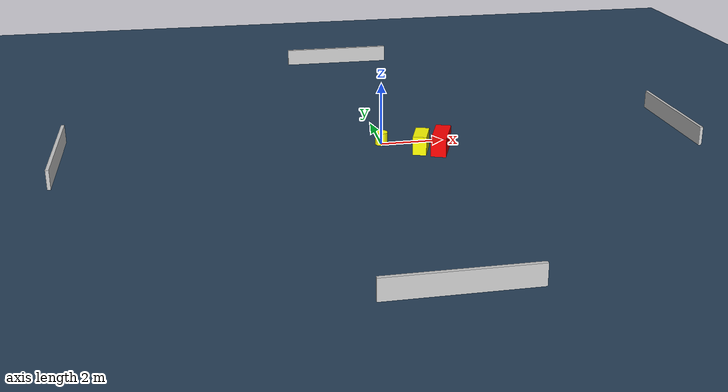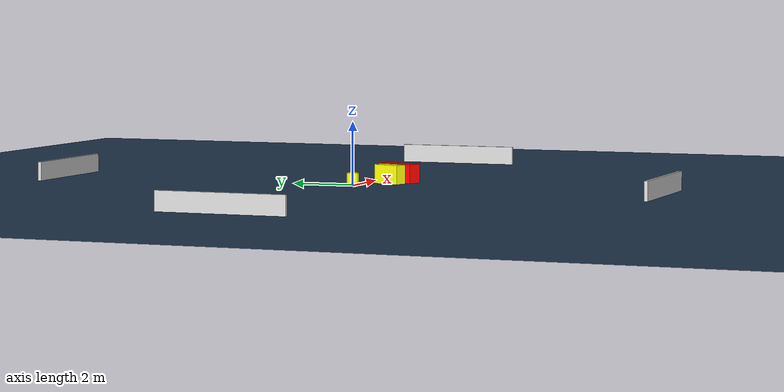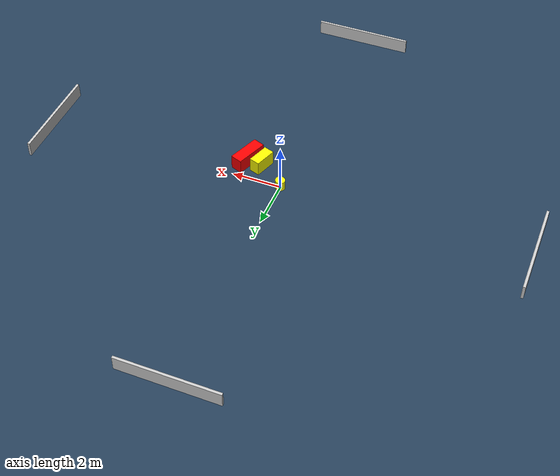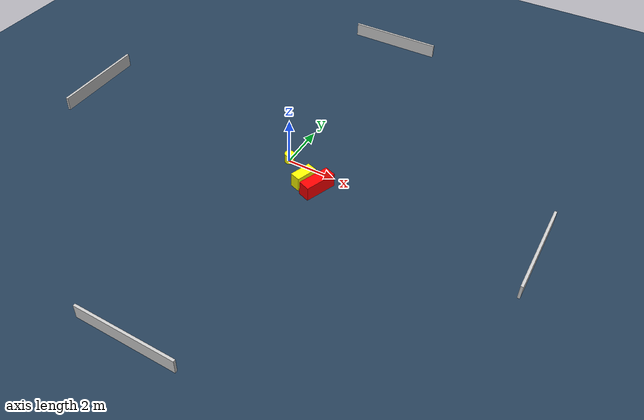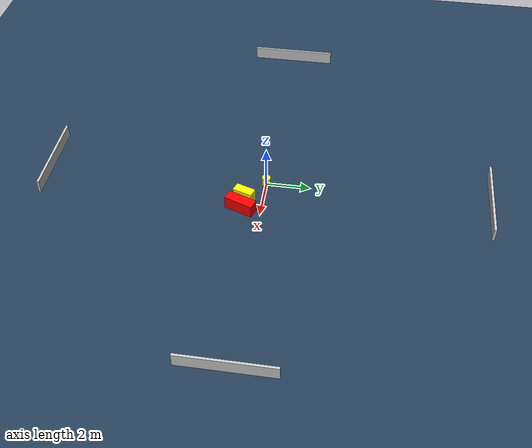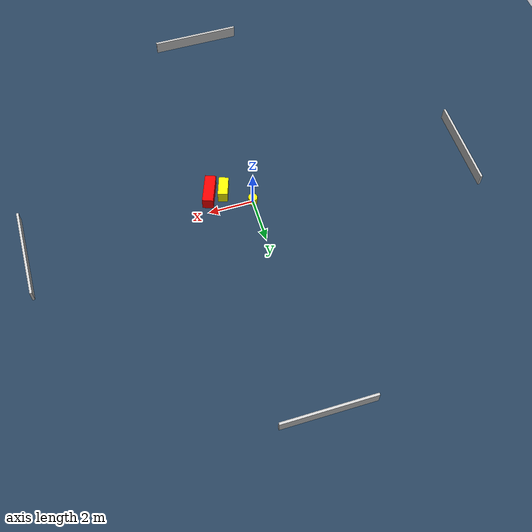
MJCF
<?xml version="1.0" ?>
<mujoco model="generated_environment">
  <option timestep="0.01" integrator="RK4" cone="elliptic"/>
  <default>
    <geom density="1"/>
  </default>
  <asset>
    <texture builtin="gradient" height="3072" name="skybox" rgb1="0.3 0.5 0.7" rgb2="0 0 0" type="skybox" width="512"/>
    <texture builtin="checker" height="300" name="groundplane" rgb1="0.2 0.3 0.4" rgb2="0.1 0.2 0.3" type="2d" width="300"/>
    <material name="groundplane" reflectance="0.2" texrepeat="5 5" texture="groundplane"/>
  </asset>
  <worldbody>
    <light dir="0 0 -1" directional="true" pos="0 0 1.5"/>
    <geom condim="3" friction="0.5 0.005 0.001" material="groundplane" name="floor" pos="0 0 0" size="0 0 0.05" type="plane"/>
    <body name="walls">
      <geom name="wall_1" condim="4" pos="-10.0 0.0 0.3" rgba="0.800000011920929 0.800000011920929 0.800000011920929 1.0" size="0.05 2.0 0.3" type="box"/>
      <geom name="wall_2" condim="4" pos="10.0 0.0 0.3" rgba="0.800000011920929 0.800000011920929 0.800000011920929 1.0" size="0.05 2.0 0.3" type="box"/>
      <geom name="wall_3" condim="4" pos="0.0 -10.0 0.3" rgba="0.800000011920929 0.800000011920929 0.800000011920929 1.0" size="2.0 0.05 0.3" type="box"/>
      <geom name="wall_4" condim="4" pos="0.0 10.0 0.3" rgba="0.800000011920929 0.800000011920929 0.800000011920929 1.0" size="2.0 0.05 0.3" type="box"/>
    </body>
    <body name="robot">
      <joint name="joint_x" type="slide" pos="0 0 0" axis="1 0 0"/>
      <joint name="joint_y" type="slide" pos="0 0 0" axis="0 1 0"/>
      <geom name="robot" type="cylinder" pos="0.0 0.0 0.2" size="0.2 0.2 0.0" mass="5.0" friction="1.0 0.005 0.0001" condim="4" rgba="1.0 1.0 0.0 1.0"/>
    </body>
    <body name="obstacle_1_movable">
      <geom name="obstacle_1_movable" condim="4" pos="1.1171618310321785 -0.8244530853175257 0.3" euler="0 0 71.01571403302863" friction="0.0 0.005 0.001" rgba="1.0 1.0 0.0 1.0" size="0.4489242486832079 0.21435802072015428 0.3" type="box" mass="0.1"/>
      <joint type="free"/>
    </body>
    <body name="obstacle_2_static">
      <geom name="obstacle_2_static" condim="4" pos="1.7444050805872877 -0.8860639498338446 0.3" euler="0 0 159.31264829389082" friction="0.0 0.005 0.001" rgba="1.0 0.0 0.0 1.0" size="0.24205278773592548 0.6634222640265313 0.3" type="box"/>
    </body>
  </worldbody>
  <actuator>
    <motor name="actuator_x" joint="joint_x" gear="1" ctrlrange="-1 1"/>
    <motor name="actuator_y" joint="joint_y" gear="1" ctrlrange="-1 1"/>
  </actuator>
</mujoco>
